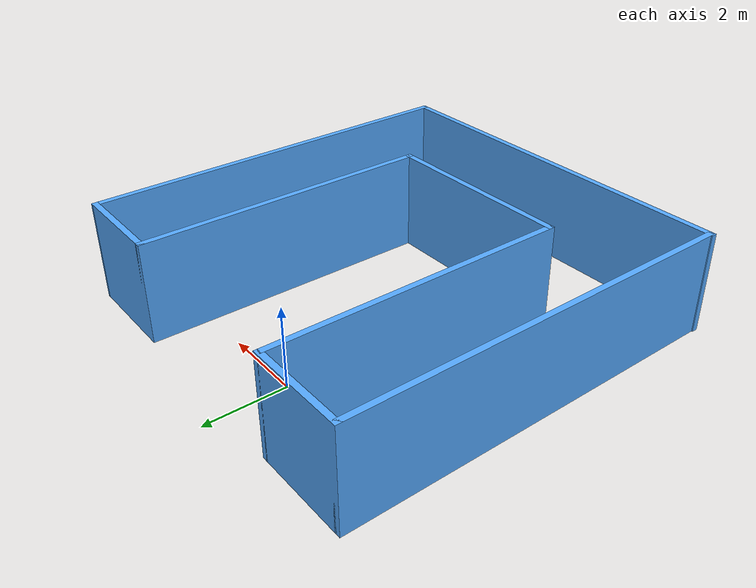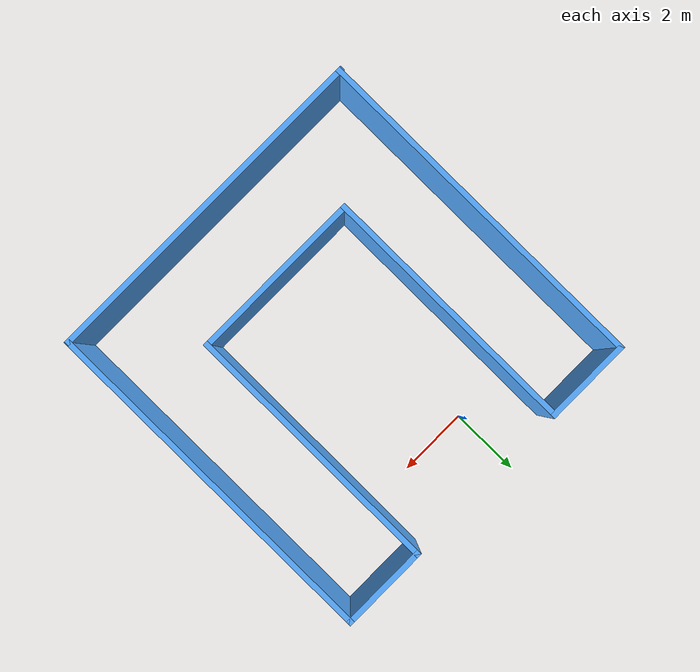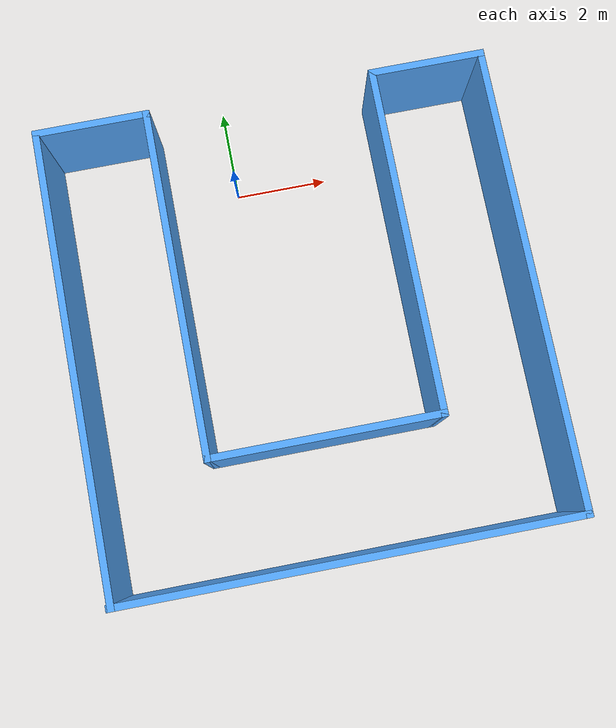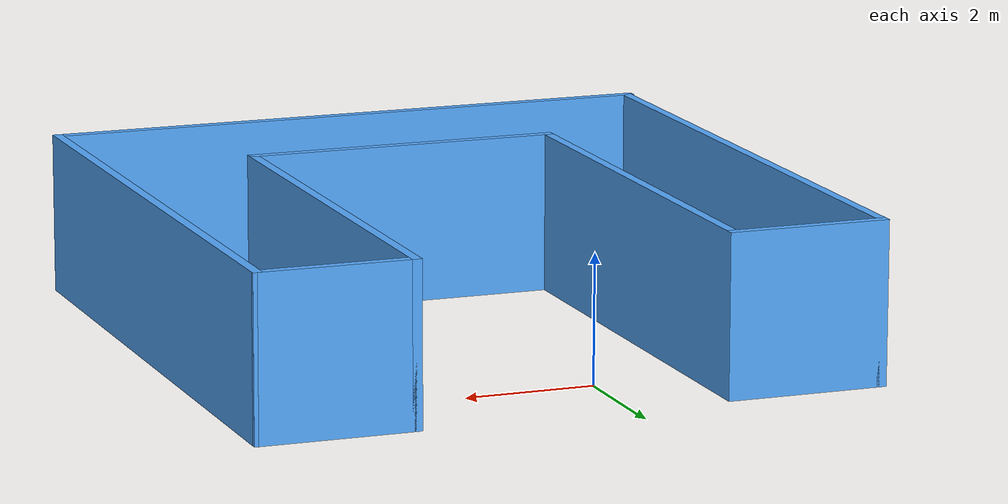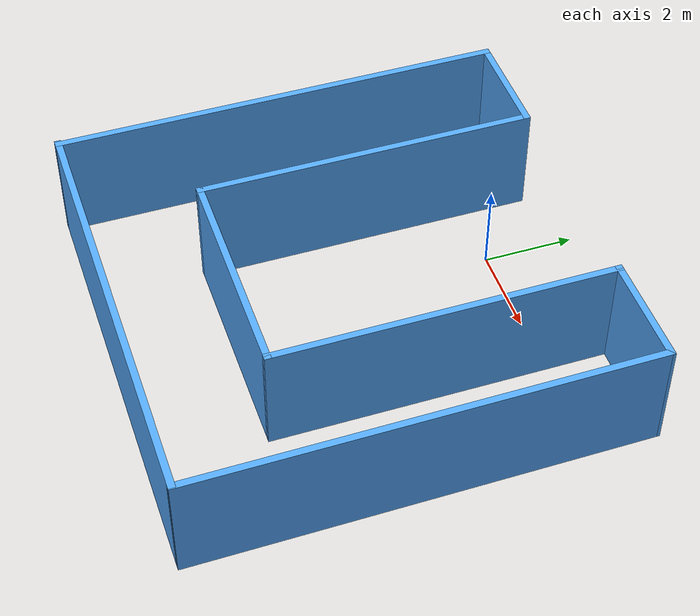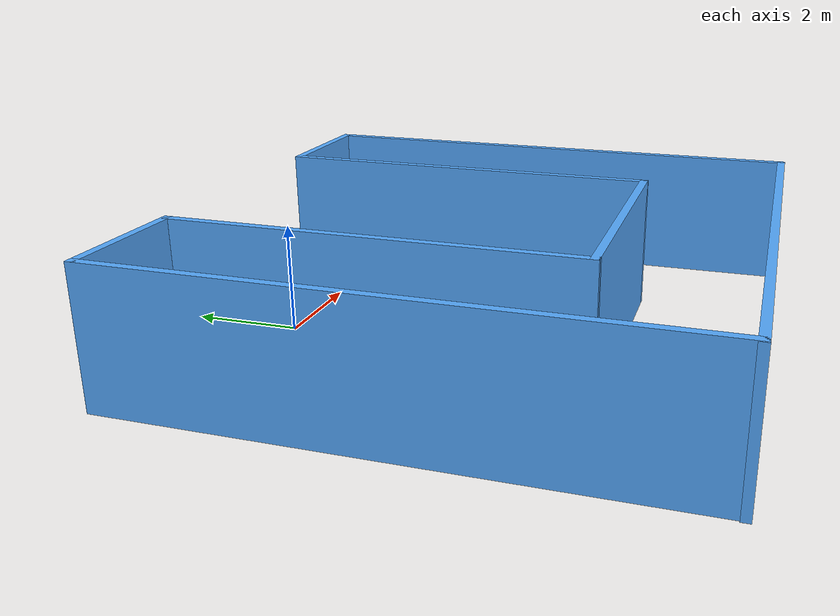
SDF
<?xml version='1.0'?>
<sdf version='1.7'>
  <model name='mybuilding'>
    <pose>0.856681 -3.51437 0 0 -0 0</pose>
    <link name='Wall_18'>
      <collision name='Wall_18_Collision'>
        <geometry>
          <box>
            <size>10 0.15 2.5</size>
          </box>
        </geometry>
        <pose>0 0 1.25 0 -0 0</pose>
      </collision>
      <visual name='Wall_18_Visual'>
        <pose>0 0 1.25 0 -0 0</pose>
        <geometry>
          <box>
            <size>10 0.15 2.5</size>
          </box>
        </geometry>
        <material>
          <script>
            <uri>file://media/materials/scripts/gazebo.material</uri>
            <name>Gazebo/Grey</name>
          </script>
          <ambient>0.333333 0.666667 1 1</ambient>
        </material>
        <meta>
          <layer>0</layer>
        </meta>
      </visual>
      <pose>-4.78467 0 0 0 -0 1.5708</pose>
    </link>
    <link name='Wall_19'>
      <collision name='Wall_19_Collision'>
        <geometry>
          <box>
            <size>2.5 0.15 2.5</size>
          </box>
        </geometry>
        <pose>0 0 1.25 0 -0 0</pose>
      </collision>
      <visual name='Wall_19_Visual'>
        <pose>0 0 1.25 0 -0 0</pose>
        <geometry>
          <box>
            <size>2.5 0.15 2.5</size>
          </box>
        </geometry>
        <material>
          <script>
            <uri>file://media/materials/scripts/gazebo.material</uri>
            <name>Gazebo/Grey</name>
          </script>
          <ambient>0.333333 0.666667 1 1</ambient>
        </material>
        <meta>
          <layer>0</layer>
        </meta>
      </visual>
      <pose>-3.60967 4.925 0 0 -0 0</pose>
    </link>
    <link name='Wall_20'>
      <collision name='Wall_20_Collision'>
        <geometry>
          <box>
            <size>7.5 0.15 2.5</size>
          </box>
        </geometry>
        <pose>0 0 1.25 0 -0 0</pose>
      </collision>
      <visual name='Wall_20_Visual'>
        <pose>0 0 1.25 0 -0 0</pose>
        <geometry>
          <box>
            <size>7.5 0.15 2.5</size>
          </box>
        </geometry>
        <material>
          <script>
            <uri>file://media/materials/scripts/gazebo.material</uri>
            <name>Gazebo/Grey</name>
          </script>
          <ambient>0.333333 0.666667 1 1</ambient>
        </material>
        <meta>
          <layer>0</layer>
        </meta>
      </visual>
      <pose>-2.43467 1.25 0 0 -0 -1.5708</pose>
    </link>
    <link name='Wall_21'>
      <collision name='Wall_21_Collision'>
        <geometry>
          <box>
            <size>5 0.15 2.5</size>
          </box>
        </geometry>
        <pose>0 0 1.25 0 -0 0</pose>
      </collision>
      <visual name='Wall_21_Visual'>
        <pose>0 0 1.25 0 -0 0</pose>
        <geometry>
          <box>
            <size>5 0.15 2.5</size>
          </box>
        </geometry>
        <material>
          <script>
            <uri>file://media/materials/scripts/gazebo.material</uri>
            <name>Gazebo/Grey</name>
          </script>
          <ambient>0.333333 0.666667 1 1</ambient>
        </material>
        <meta>
          <layer>0</layer>
        </meta>
      </visual>
      <pose>-0.009675 -2.425 0 0 -0 0</pose>
    </link>
    <link name='Wall_27'>
      <collision name='Wall_27_Collision'>
        <geometry>
          <box>
            <size>7.5 0.15 2.5</size>
          </box>
        </geometry>
        <pose>0 0 1.25 0 -0 0</pose>
      </collision>
      <visual name='Wall_27_Visual'>
        <pose>0 0 1.25 0 -0 0</pose>
        <geometry>
          <box>
            <size>7.5 0.15 2.5</size>
          </box>
        </geometry>
        <material>
          <script>
            <uri>file://media/materials/scripts/gazebo.material</uri>
            <name>Gazebo/Grey</name>
          </script>
          <ambient>0.333333 0.666667 1 1</ambient>
        </material>
        <meta>
          <layer>0</layer>
        </meta>
      </visual>
      <pose>2.41533 1.25 0 0 -0 1.5708</pose>
    </link>
    <link name='Wall_28'>
      <collision name='Wall_28_Collision'>
        <geometry>
          <box>
            <size>2.5 0.15 2.5</size>
          </box>
        </geometry>
        <pose>0 0 1.25 0 -0 0</pose>
      </collision>
      <visual name='Wall_28_Visual'>
        <pose>0 0 1.25 0 -0 0</pose>
        <geometry>
          <box>
            <size>2.5 0.15 2.5</size>
          </box>
        </geometry>
        <material>
          <script>
            <uri>file://media/materials/scripts/gazebo.material</uri>
            <name>Gazebo/Grey</name>
          </script>
          <ambient>0.333333 0.666667 1 1</ambient>
        </material>
        <meta>
          <layer>0</layer>
        </meta>
      </visual>
      <pose>3.59032 4.925 0 0 -0 0</pose>
    </link>
    <link name='Wall_29'>
      <collision name='Wall_29_Collision'>
        <geometry>
          <box>
            <size>10 0.15 2.5</size>
          </box>
        </geometry>
        <pose>0 0 1.25 0 -0 0</pose>
      </collision>
      <visual name='Wall_29_Visual'>
        <pose>0 0 1.25 0 -0 0</pose>
        <geometry>
          <box>
            <size>10 0.15 2.5</size>
          </box>
        </geometry>
        <material>
          <script>
            <uri>file://media/materials/scripts/gazebo.material</uri>
            <name>Gazebo/Grey</name>
          </script>
          <ambient>0.333333 0.666667 1 1</ambient>
        </material>
        <meta>
          <layer>0</layer>
        </meta>
      </visual>
      <pose>4.78833 0 0 0 -0 -1.56613</pose>
    </link>
    <link name='Wall_30'>
      <collision name='Wall_30_Collision'>
        <geometry>
          <box>
            <size>9.75 0.15 2.5</size>
          </box>
        </geometry>
        <pose>0 0 1.25 0 -0 0</pose>
      </collision>
      <visual name='Wall_30_Visual'>
        <pose>0 0 1.25 0 -0 0</pose>
        <geometry>
          <box>
            <size>9.75 0.15 2.5</size>
          </box>
        </geometry>
        <material>
          <script>
            <uri>file://media/materials/scripts/gazebo.material</uri>
            <name>Gazebo/Grey</name>
          </script>
          <ambient>0.333333 0.666667 1 1</ambient>
        </material>
        <meta>
          <layer>0</layer>
        </meta>
      </visual>
      <pose>-0.011675 -4.925 0 0 -0 3.14159</pose>
    </link>
    <static>1</static>
  </model>
</sdf>
